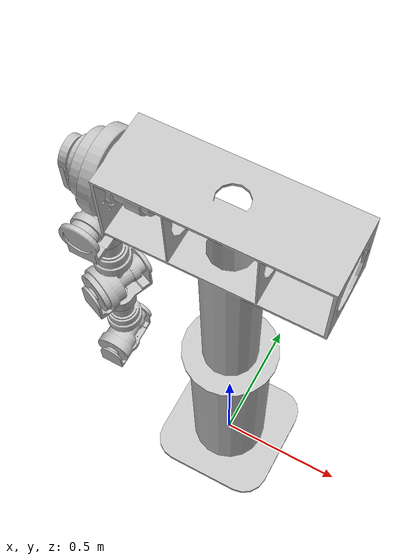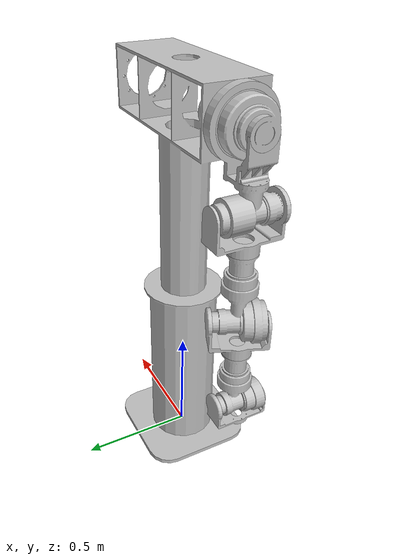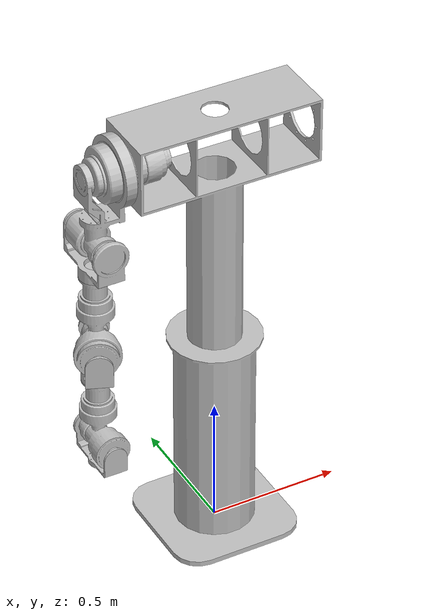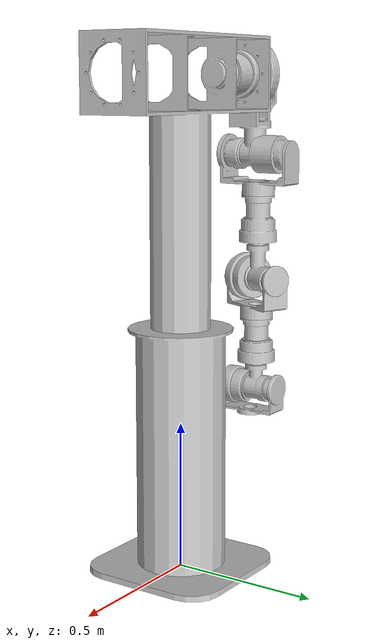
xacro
<?xml version="1.0"?>
<robot name="aid" xmlns:xacro="http://ros.org/wiki/xacro">

  <!-- Defining the colors used in this robot -->
  <material name="Black">
    <color rgba="0 0 0 1"/>
  </material>

  <material name="White">
    <color rgba="1 1 1 1"/>
  </material>

  <material name="Blue">
    <color rgba="0 0 1 1"/>
  </material>

  <material name="Red">
    <color rgba="1 0 0 1"/>
  </material>

  <material name="Grey">
    <color rgba="0.96 0.96 0.96 1"/>
  </material>

  <!-- Constants -->
  <xacro:property name="M_PI" value="3.1415926"/>
  <xacro:property name="R_LIMIT" value="3.05"/>

  <!-- //////// DYNAMICS PARAM /////// -->

  <xacro:macro name="L0_Shoulder_Inertia">
    <origin xyz="-0.065339 -1.9234E-15 0.93756"
            rpy="0 0 0" />
    <mass value="37.032" />
    <inertia  ixx="14.546"
              ixy="-2.0675E-14"
              ixz="1.736"
              iyy="15.487"
              iyz="5.0978E-14"
              izz="1.5176" />
  </xacro:macro>

  <xacro:macro name="L1_BigArm_Inertia">
    <origin xyz="0.01517 -0.19923 -0.016519"
            rpy="0 0 0" />
    <mass value="38.9" />
    <inertia  ixx="0.69607"
              ixy="-0.10626"
              ixz="-0.0097479"
              iyy="0.23375"
              iyz="-0.048863"
              izz="0.59973" />
  </xacro:macro>

  <xacro:macro name="L2_Elbow_Inertia">
    <origin xyz="1.6653E-16 -0.064421 0.015667"
            rpy="0 0 0" />
    <mass value="11.18" />
    <inertia  ixx="0.14822"
              ixy="8.3834E-17"
              ixz="7.8495E-18"
              iyy="0.12818"
              iyz="-0.012852"
              izz="0.044066" />
  </xacro:macro>

  <xacro:macro name="L3_ForeArm_Inertia">
    <origin xyz="0.0061768 0.014912 0.020282"
            rpy="0 0 0" />
    <mass value="16.17" />
    <inertia  ixx="0.232059974154934"
              ixy="-0.005837242059444"
              ixz="-0.008987732435557"
              iyy="0.220384023668639"
              iyz="-0.021698571720057"
              izz="0.049915146568727" />
  </xacro:macro>

  <xacro:macro name="L4_Wrist1_Inertia">
    <origin xyz="-3.3307E-15 -0.071299 -0.012584"
            rpy="0 0 0" />
    <mass value="10.14" />
    <inertia  ixx="0.10127"
              ixy="1.077E-15"
              ixz="-2.5356E-15"
              iyy="0.08693"
              iyz="0.010069"
              izz="0.034066" />
  </xacro:macro>

  <xacro:macro name="L5_Wrist2_Inertia">
    <origin xyz="0.0071606 -0.17208 0.017287"
            rpy="0 0 0" />
    <mass value="10.91" />
    <inertia  ixx="0.124071088191495"
              ixy="0.006790844685897"
              ixz="-0.005624086647179"
              iyy="0.033104277204787"
              iyz="0.016394484860184"
              izz="0.112821711433457" />
  </xacro:macro>

  <xacro:macro name="L6_Palm_Inertia">
    <origin xyz="-0.024868 -0.0455 -4.6629E-15"
            rpy="0 0 0" />
    <mass value="5.91" />
    <inertia  ixx="0.014677242234883"
              ixy="0.006892601314097"
              ixz="-8.11009281382099E-15"
              iyy="0.050065553207131"
              iyz="-4.66386004410954E-15"
              izz="0.05589707544569" />
  </xacro:macro>

  <!--////////// BASE AND SHOULDER ///////////-->

  <link name="L0">
    <inertia>
      <xacro:L0_Shoulder_Inertia/>
    </inertia>
    <visual>
      <origin xyz="0 0 0" rpy="0 0 0" />
      <geometry>
        <mesh filename="package://aid/meshes/L0.STL" />
      </geometry>
      <material name="">
        <color  rgba="0.75294 0.75294 0.75294 1" />
      </material>
    </visual>
    <collision>
      <origin xyz="0 0 0"
              rpy="0 0 0" />
      <geometry>
        <mesh filename="package://aid/meshes/L0.STL" />
      </geometry>
    </collision>
  </link>

  <!--/////////////// BIG ARM //////////////-->

  <link name="L1">
    <inertia>
      <xacro:L1_BigArm_Inertia/>
    </inertia>
    <visual>
      <origin xyz="0 0 0" rpy="0 0 0" />
      <geometry>
        <mesh filename="package://aid/meshes/L1.STL" />
      </geometry>
      <material name="">
        <color  rgba="0.75294 0.75294 0.75294 1" />
      </material>
    </visual>
    <collision>
      <origin xyz="0 0 0" rpy="0 0 0" />
      <geometry>
        <mesh filename="package://aid/meshes/L1.STL" />
      </geometry>
    </collision>
  </link>

  <!--////////////////// SHOULDER JOINT /////////////////////-->

  <joint name="J1" type="revolute">
    <origin xyz="-0.4605 0 1.655" rpy="1.5708 0 0" />
    <parent link="L0" />
    <child  link="L1" />
    <axis xyz="1 0 0" />
    <limit  lower="-${R_LIMIT}" upper="${R_LIMIT}"  effort="1000" velocity="3.1416" />
  </joint>

  <!--/////////// ELBOW ////////////-->

  <link name="L2">
    <inertia>
      <xacro:L2_Elbow_Inertia/>
    </inertia>
    <visual>
      <origin xyz="0 0 0" rpy="0 0 0" />
      <geometry>
        <mesh filename="package://aid/meshes/L2.STL" />
      </geometry>
      <material name="">
        <color  rgba="0.75294 0.75294 0.75294 1" />
      </material>
    </visual>
    <collision>
      <origin xyz="0 0 0" rpy="0 0 0" />
      <geometry>
        <mesh filename="package://aid/meshes/L2.STL" />
      </geometry>
    </collision>
  </link>

  <!--///////////////// BIGARM JOINT ///////////////////////////-->

  <joint name="J2" type="revolute">
    <origin xyz="0 -0.275 -0.015" rpy="0 0 0" />
    <parent link="L1" />
    <child  link="L2" />
    <axis xyz="0 0 1" />
    <limit  lower="-${R_LIMIT}" upper="${R_LIMIT}"  effort="1000" velocity="3.1416" />
  </joint>

  <!--/////////// ELBOW ////////////-->

  <link name="L3">
    <inertia>
      <xacro:L3_ForeArm_Inertia/>
    </inertia>
    <visual>
      <origin xyz="0 0 0" rpy="0 0 0" />
      <geometry>
        <mesh filename="package://aid/meshes/L3.STL" />
      </geometry>
      <material name="">
        <color  rgba="0.75294 0.75294 0.75294 1" />
      </material>
    </visual>
    <collision>
      <origin xyz="0 0 0" rpy="0 0 0" />
      <geometry>
        <mesh filename="package://aid/meshes/L3.STL" />
      </geometry>
    </collision>
  </link>

  <!--//////////////////// ELBOW JOINT ////////////////////////-->

  <joint name="J3" type="revolute">
    <origin xyz="0 -0.332 0" rpy="1.5708 -0.7854 0" />
    <parent link="L2" />
    <child  link="L3" />
    <axis xyz="0 0 -1" />
    <limit  lower="-${R_LIMIT}" upper="${R_LIMIT}"  effort="800" velocity="3.1416" />
  </joint>

  <!--//////////// WRIST1 //////////////////////-->

  <link name="L4">
    <inertia>
      <xacro:L4_Wrist1_Inertia/>
    </inertia>
    <visual>
      <origin xyz="0 0 0" rpy="0 0 0" />
      <geometry>
        <mesh filename="package://aid/meshes/L4.STL" />
      </geometry>
      <material name="">
        <color  rgba="0.75294 0.75294 0.75294 1" />
      </material>
    </visual>
    <collision>
      <origin xyz="0 0 0" rpy="0 0 0" />
      <geometry>
        <mesh filename="package://aid/meshes/L4.STL" />
      </geometry>
    </collision>
  </link>

  <!--/////////////////// WRIST1 JOINT //////////////////////-->

  <joint name="J4" type="revolute">
    <origin xyz="0.0019134 0.0046194 0.11"  rpy="-1.5708 0 -0.3927" />
    <parent link="L3" />
    <child  link="L4" />
    <axis xyz="0 0 1" />
    <limit  lower="-${R_LIMIT}" upper="${R_LIMIT}"  effort="600" velocity="3.1416" />
  </joint>

  <!--///////////////// WRIST2 ////////////////////-->

  <link name="L5">
    <inertia>
      <xacro:L5_Wrist2_Inertia/>
    </inertia>
    <visual>
      <origin xyz="0 0 0" rpy="0 0 0" />
      <geometry>
        <mesh filename="package://aid/meshes/L5.STL" />
      </geometry>
      <material name="">
        <color  rgba="0.75294 0.75294 0.75294 1" />
      </material>
    </visual>
    <collision>
      <origin xyz="0 0 0" rpy="0 0 0" />
      <geometry>
        <mesh filename="package://aid/meshes/L5.STL" />
      </geometry>
    </collision>
  </link>

  <!--////////////////// WRIST2 JOINT ///////////////////////-->

  <joint name="J5" type="revolute">
    <origin  xyz="0 -0.145 0"  rpy="0 -8.6098E-14 0" />
    <parent link="L4" />
    <child  link="L5" />
    <axis xyz="0 1 0" />
    <limit  lower="-${R_LIMIT}" upper="${R_LIMIT}"  effort="400" velocity="3.1416" />
  </joint>

  <!--///////////////// PALM //////////////////////-->

  <link name="L6">
    <inertia>
      <xacro:L5_Wrist2_Inertia/>
    </inertia>
    <visual>
      <origin xyz="0 0 0" rpy="0 0 0" />
      <geometry>
        <mesh filename="package://aid/meshes/L6.STL" />
      </geometry>
      <material name="">
        <color  rgba="0.75294 0.75294 0.75294 1" />
      </material>
    </visual>
    <collision>
      <origin xyz="0 0 0" rpy="0 0 0" />
      <geometry>
        <mesh filename="package://aid/meshes/L6.STL" />
      </geometry>
    </collision>
  </link>

  <!--///////////////// PALM JOINT ////////////////////////-->

  <joint name="J6" type="revolute">
    <origin xyz="0.0082277 -0.259 0.019863" rpy="0 -1.1781 0" />
    <parent link="L5" />
    <child  link="L6" />
    <axis xyz="1 0 0" />
    <limit  lower="-${R_LIMIT}" upper="${R_LIMIT}"  effort="200" velocity="3.1416" />
  </joint>

  <link name="world" />
  <joint name="world_joint" type="fixed">
    <parent link="world" />
    <child link = "L0" />
    <origin xyz="0.0 0.0 0.0" rpy="0.0 0.0 0.0" />
  </joint>

  <!--////////////////////////////////// Transmissions for ROS Control //////////////////////////-->

  <xacro:macro name="aid_arm_transmission" params="joint_name">
    <transmission name="${joint_name}_trans">
      <type>transmission_interface/SimpleTransmission</type>
        <joint name="${joint_name}">
          <hardwareInterface>hardware_interface/PositionJointInterface</hardwareInterface>
        </joint>
      <actuator name="${joint_name}_motor">
        <mechanicalReduction>1</mechanicalReduction>
      </actuator>
    </transmission>
  </xacro:macro>

  <xacro:aid_arm_transmission joint_name="J1"/>
  <xacro:aid_arm_transmission joint_name="J2"/>
  <xacro:aid_arm_transmission joint_name="J3"/>
  <xacro:aid_arm_transmission joint_name="J4"/>
  <xacro:aid_arm_transmission joint_name="J5"/>
  <xacro:aid_arm_transmission joint_name="J6"/>

  <!-- ros_control plugin -->
  <gazebo>
    <plugin name="gazebo_ros_control" filename="libgazebo_ros_control.so">
      <robotNamespace>/aid</robotNamespace>
      <robotSimType>gazebo_ros_control/DefaultRobotHWSim</robotSimType>
      <legacyModeNS>true</legacyModeNS>
    </plugin>
  </gazebo>

</robot>
